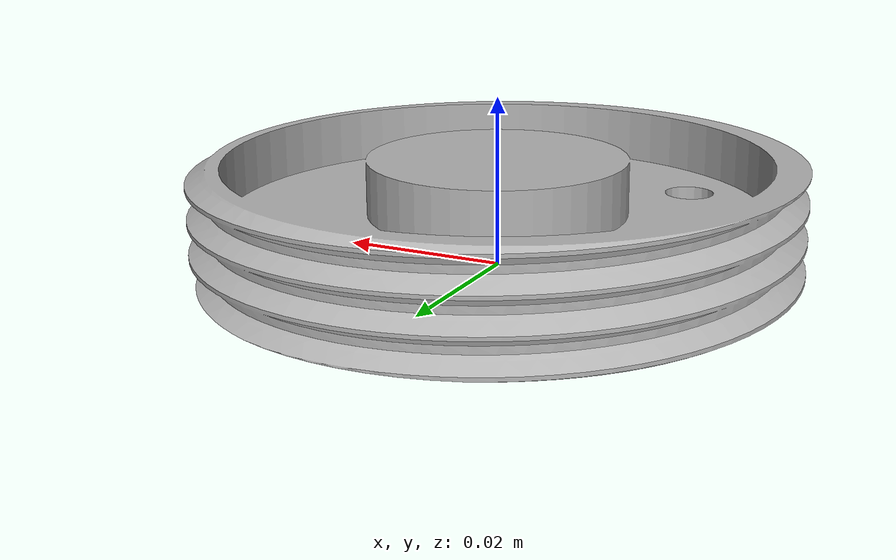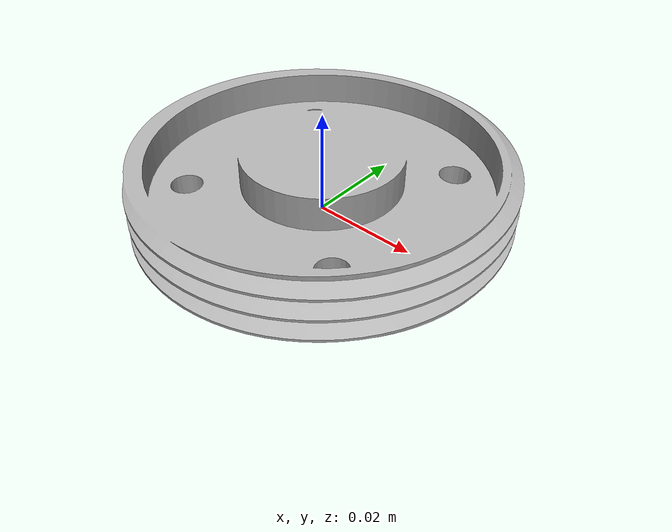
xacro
<?xml version="1.0" ?>
<robot name="Rosca_UR3" xmlns:xacro="http://www.ros.org/wiki/xacro">

<xacro:include filename="$(find Rosca_UR3_description)/urdf/materials.xacro" />
<xacro:include filename="$(find Rosca_UR3_description)/urdf/Rosca_UR3.trans" />
<xacro:include filename="$(find Rosca_UR3_description)/urdf/Rosca_UR3.gazebo" />
<link name="base_link">
  <inertial>
    <origin xyz="-8.863797352811024e-05 8.924358068701335e-05 0.004939305751895978" rpy="0 0 0"/>
    <mass value="0.24684642771317108"/>
    <inertia ixx="7.4e-05" iyy="7.4e-05" izz="0.000141" ixy="0.0" iyz="-0.0" ixz="-0.0"/>
  </inertial>
  <visual>
    <origin xyz="0 0 0" rpy="0 0 0"/>
    <geometry>
      <mesh filename="package://Rosca_UR3_description/meshes/base_link.stl" scale="0.001 0.001 0.001"/>
    </geometry>
    <material name="silver"/>
  </visual>
  <collision>
    <origin xyz="0 0 0" rpy="0 0 0"/>
    <geometry>
      <mesh filename="package://Rosca_UR3_description/meshes/base_link.stl" scale="0.001 0.001 0.001"/>
    </geometry>
  </collision>
</link>

</robot>

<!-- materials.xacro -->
<robot name="Rosca_UR3" xmlns:xacro="http://www.ros.org/wiki/xacro" >

<material name="silver">
  <color rgba="0.700 0.700 0.700 1.000"/>
</material>

</robot>

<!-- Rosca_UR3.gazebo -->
<robot name="Rosca_UR3" xmlns:xacro="http://www.ros.org/wiki/xacro" >

<xacro:property name="body_color" value="Gazebo/Silver" />

<gazebo>
  <plugin name="control" filename="libgazebo_ros_control.so"/>
</gazebo>
<gazebo reference="base_link">
  <material>${body_color}</material>
  <mu1>0.2</mu1>
  <mu2>0.2</mu2>
  <selfCollide>true</selfCollide>
  <gravity>true</gravity>
</gazebo>

</robot>
